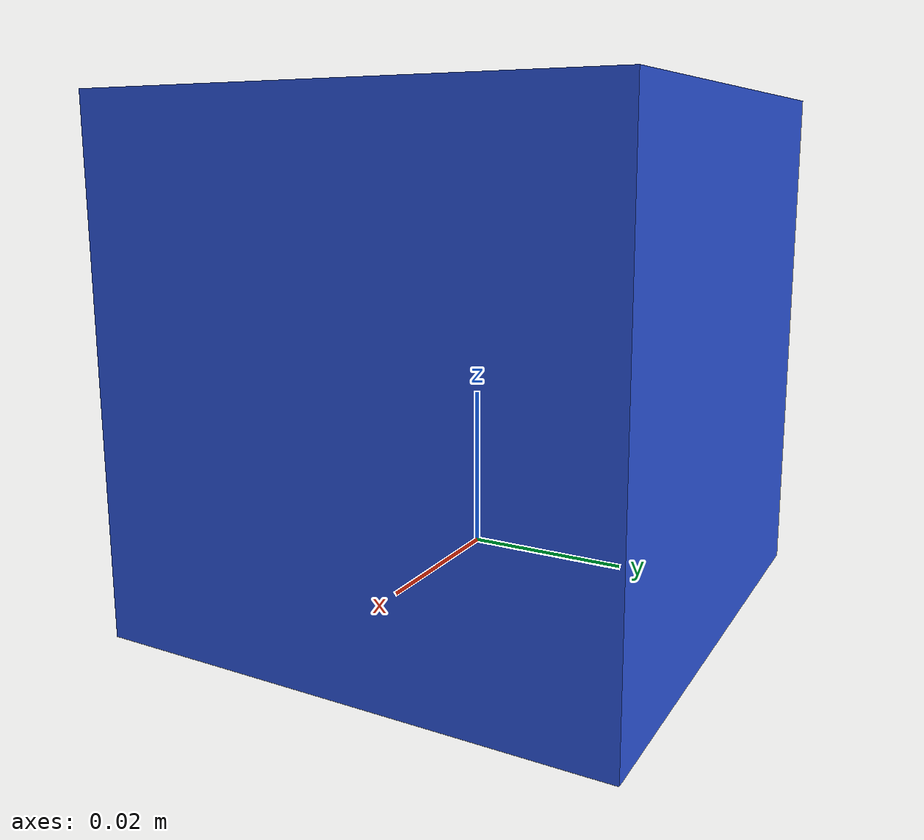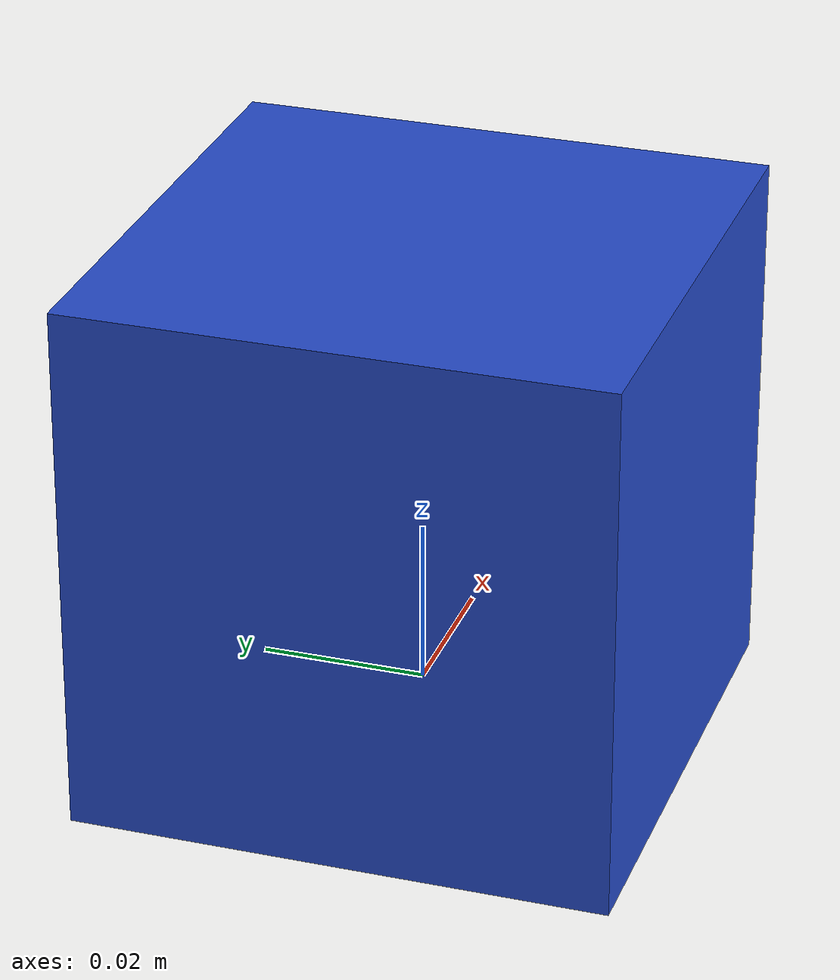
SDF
<?xml version='1.0'?>
<sdf version="1.4">
<model name="Cube">
  <pose>0 0 0.025 0 0 0</pose>
    <link name="cube">
      <inertial>
        <mass>0.5</mass>
        <inertia>
          <ixx>0.0004</ixx>
          <ixy>0.0</ixy>
          <ixz>0.0</ixz>
          <iyy>0.0004</iyy>
          <iyz>0.0</iyz>
          <izz>0.0004</izz>
        </inertia>
      </inertial>
      <collision name="collision">
        <geometry>
          <box>
            <size>0.065 0.065 0.065</size>
          </box>
        </geometry>
      </collision>
      <visual name="visual">
        <geometry>
          <box>
            <size>0.065 0.065 0.065</size>
          </box>
        </geometry>
        <plugin name="color_plugin" filename="libDREAM_change_color.so"/>
        <material>
              <script>
                <uri>file://media/materials/scripts/gazebo.material</uri>
                <name>Gazebo/Blue</name>
              </script>
        </material>
      </visual>
    </link>
  </model>
</sdf>
